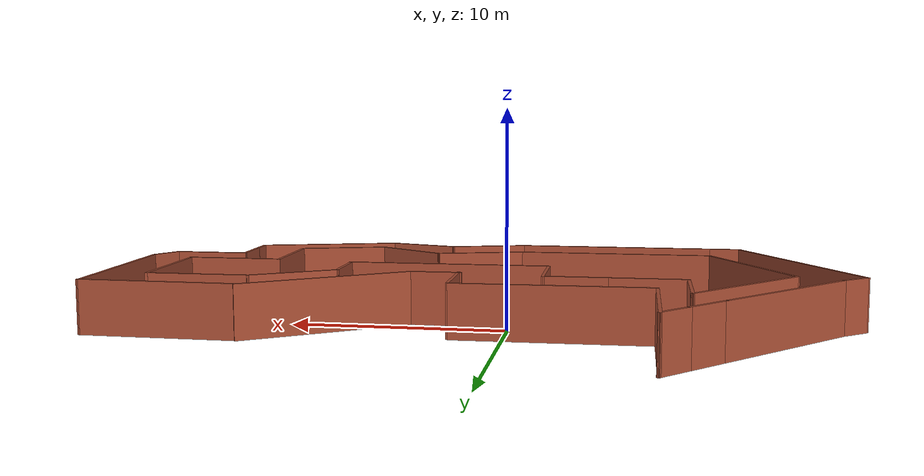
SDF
<?xml version='1.0'?>
<sdf version='1.6'>
  <model name='burger_race'>
    <pose frame=''>1.42471 -1.62776 0 0 -0 0</pose>
    <link name='Wall_10'>
      <collision name='Wall_10_Collision'>
        <geometry>
          <box>
            <size>4 0.15 2.5</size>
          </box>
        </geometry>
        <pose frame=''>0 0 1.25 0 -0 0</pose>
      </collision>
      <visual name='Wall_10_Visual'>
        <pose frame=''>0 0 1.25 0 -0 0</pose>
        <geometry>
          <box>
            <size>4 0.15 2.5</size>
          </box>
        </geometry>
        <material>
          <script>
            <uri>file://media/materials/scripts/gazebo.material</uri>
            <name>Gazebo/Bricks</name>
          </script>
          <ambient>1 1 1 1</ambient>
        </material>
        <meta>
          <layer>0</layer>
        </meta>
      </visual>
      <pose frame=''>4.60271 -5.99815 0 0 -0 -0.523599</pose>
    </link>
    <link name='Wall_11'>
      <collision name='Wall_11_Collision'>
        <geometry>
          <box>
            <size>4.5 0.15 2.5</size>
          </box>
        </geometry>
        <pose frame=''>0 0 1.25 0 -0 0</pose>
      </collision>
      <visual name='Wall_11_Visual'>
        <pose frame=''>0 0 1.25 0 -0 0</pose>
        <geometry>
          <box>
            <size>4.5 0.15 2.5</size>
          </box>
        </geometry>
        <material>
          <script>
            <uri>file://media/materials/scripts/gazebo.material</uri>
            <name>Gazebo/Bricks</name>
          </script>
          <ambient>1 1 1 1</ambient>
        </material>
        <meta>
          <layer>0</layer>
        </meta>
      </visual>
      <pose frame=''>8.37069 -6.39772 0 0 -0 0.261799</pose>
    </link>
    <link name='Wall_12'>
      <collision name='Wall_12_Collision'>
        <geometry>
          <box>
            <size>4 0.15 2.5</size>
          </box>
        </geometry>
        <pose frame=''>0 0 1.25 0 -0 0</pose>
      </collision>
      <visual name='Wall_12_Visual'>
        <pose frame=''>0 0 1.25 0 -0 0</pose>
        <geometry>
          <box>
            <size>4 0.15 2.5</size>
          </box>
        </geometry>
        <material>
          <script>
            <uri>file://media/materials/scripts/gazebo.material</uri>
            <name>Gazebo/Bricks</name>
          </script>
          <ambient>1 1 1 1</ambient>
        </material>
        <meta>
          <layer>0</layer>
        </meta>
      </visual>
      <pose frame=''>10.4716 -3.90979 0 0 -0 1.5708</pose>
    </link>
    <link name='Wall_13'>
      <collision name='Wall_13_Collision'>
        <geometry>
          <box>
            <size>4.75 0.15 2.5</size>
          </box>
        </geometry>
        <pose frame=''>0 0 1.25 0 -0 0</pose>
      </collision>
      <visual name='Wall_13_Visual'>
        <pose frame=''>0 0 1.25 0 -0 0</pose>
        <geometry>
          <box>
            <size>4.75 0.15 2.5</size>
          </box>
        </geometry>
        <material>
          <script>
            <uri>file://media/materials/scripts/gazebo.material</uri>
            <name>Gazebo/Bricks</name>
          </script>
          <ambient>1 1 1 1</ambient>
        </material>
        <meta>
          <layer>0</layer>
        </meta>
      </visual>
      <pose frame=''>12.7716 -1.98479 0 0 -0 0</pose>
    </link>
    <link name='Wall_14'>
      <collision name='Wall_14_Collision'>
        <geometry>
          <box>
            <size>5 0.15 2.5</size>
          </box>
        </geometry>
        <pose frame=''>0 0 1.25 0 -0 0</pose>
      </collision>
      <visual name='Wall_14_Visual'>
        <pose frame=''>0 0 1.25 0 -0 0</pose>
        <geometry>
          <box>
            <size>5 0.15 2.5</size>
          </box>
        </geometry>
        <material>
          <script>
            <uri>file://media/materials/scripts/gazebo.material</uri>
            <name>Gazebo/Bricks</name>
          </script>
          <ambient>1 1 1 1</ambient>
        </material>
        <meta>
          <layer>0</layer>
        </meta>
      </visual>
      <pose frame=''>15.0716 0.44021 0 0 -0 1.5708</pose>
    </link>
    <link name='Wall_15'>
      <collision name='Wall_15_Collision'>
        <geometry>
          <box>
            <size>5 0.15 2.5</size>
          </box>
        </geometry>
        <pose frame=''>0 0 1.25 0 -0 0</pose>
      </collision>
      <visual name='Wall_15_Visual'>
        <pose frame=''>0 0 1.25 0 -0 0</pose>
        <geometry>
          <box>
            <size>5 0.15 2.5</size>
          </box>
        </geometry>
        <material>
          <script>
            <uri>file://media/materials/scripts/gazebo.material</uri>
            <name>Gazebo/Bricks</name>
          </script>
          <ambient>1 1 1 1</ambient>
        </material>
        <meta>
          <layer>0</layer>
        </meta>
      </visual>
      <pose frame=''>12.6466 2.86521 0 0 -0 3.14159</pose>
    </link>
    <link name='Wall_16'>
      <collision name='Wall_16_Collision'>
        <geometry>
          <box>
            <size>4.25 0.15 2.5</size>
          </box>
        </geometry>
        <pose frame=''>0 0 1.25 0 -0 0</pose>
      </collision>
      <visual name='Wall_16_Visual'>
        <pose frame=''>0 0 1.25 0 -0 0</pose>
        <geometry>
          <box>
            <size>4.25 0.15 2.5</size>
          </box>
        </geometry>
        <material>
          <script>
            <uri>file://media/materials/scripts/gazebo.material</uri>
            <name>Gazebo/Bricks</name>
          </script>
          <ambient>1 1 1 1</ambient>
        </material>
        <meta>
          <layer>0</layer>
        </meta>
      </visual>
      <pose frame=''>8.44623 1.84021 0 0 -0 -2.61799</pose>
    </link>
    <link name='Wall_17'>
      <collision name='Wall_17_Collision'>
        <geometry>
          <box>
            <size>2.53735 0.15 2.5</size>
          </box>
        </geometry>
        <pose frame=''>0 0 1.25 0 -0 0</pose>
      </collision>
      <visual name='Wall_17_Visual'>
        <pose frame=''>0 0 1.25 0 -0 0</pose>
        <geometry>
          <box>
            <size>2.53735 0.15 2.5</size>
          </box>
        </geometry>
        <material>
          <script>
            <uri>file://media/materials/scripts/gazebo.material</uri>
            <name>Gazebo/Bricks</name>
          </script>
          <ambient>1 1 1 1</ambient>
        </material>
        <meta>
          <layer>0</layer>
        </meta>
      </visual>
      <pose frame=''>6.65758 -0.37839 0 0 -0 -1.58194</pose>
    </link>
    <link name='Wall_18'>
      <collision name='Wall_18_Collision'>
        <geometry>
          <box>
            <size>9.8185 0.15 2.5</size>
          </box>
        </geometry>
        <pose frame=''>0 0 1.25 0 -0 0</pose>
      </collision>
      <visual name='Wall_18_Visual'>
        <pose frame=''>0 0 1.25 0 -0 0</pose>
        <geometry>
          <box>
            <size>9.8185 0.15 2.5</size>
          </box>
        </geometry>
        <material>
          <script>
            <uri>file://media/materials/scripts/gazebo.material</uri>
            <name>Gazebo/Bricks</name>
          </script>
          <ambient>1 1 1 1</ambient>
        </material>
        <meta>
          <layer>0</layer>
        </meta>
      </visual>
      <pose frame=''>1.83669 -1.62397 0 0 -0 -3.13634</pose>
    </link>
    <link name='Wall_2'>
      <collision name='Wall_2_Collision'>
        <geometry>
          <box>
            <size>3.03732 0.15 2.5</size>
          </box>
        </geometry>
        <pose frame=''>0 0 1.25 0 -0 0</pose>
      </collision>
      <visual name='Wall_2_Visual'>
        <pose frame=''>0 0 1.25 0 -0 0</pose>
        <geometry>
          <box>
            <size>3.03732 0.15 2.5</size>
          </box>
        </geometry>
        <material>
          <script>
            <uri>file://media/materials/scripts/gazebo.material</uri>
            <name>Gazebo/Bricks</name>
          </script>
          <ambient>1 1 1 1</ambient>
        </material>
        <meta>
          <layer>0</layer>
        </meta>
      </visual>
      <pose frame=''>-3.01079 -0.17916 0 0 -0 1.56158</pose>
    </link>
    <link name='Wall_26'>
      <collision name='Wall_26_Collision'>
        <geometry>
          <box>
            <size>8 0.15 2.5</size>
          </box>
        </geometry>
        <pose frame=''>0 0 1.25 0 -0 0</pose>
      </collision>
      <visual name='Wall_26_Visual'>
        <pose frame=''>0 0 1.25 0 -0 0</pose>
        <geometry>
          <box>
            <size>8 0.15 2.5</size>
          </box>
        </geometry>
        <material>
          <script>
            <uri>file://media/materials/scripts/gazebo.material</uri>
            <name>Gazebo/Bricks</name>
          </script>
          <ambient>1 1 1 1</ambient>
        </material>
        <meta>
          <layer>0</layer>
        </meta>
      </visual>
      <pose frame=''>-13.4328 3.27016 0 0 -0 0.785398</pose>
    </link>
    <link name='Wall_27'>
      <collision name='Wall_27_Collision'>
        <geometry>
          <box>
            <size>2.25 0.15 2.5</size>
          </box>
        </geometry>
        <pose frame=''>0 0 1.25 0 -0 0</pose>
      </collision>
      <visual name='Wall_27_Visual'>
        <pose frame=''>0 0 1.25 0 -0 0</pose>
        <geometry>
          <box>
            <size>2.25 0.15 2.5</size>
          </box>
        </geometry>
        <material>
          <script>
            <uri>file://media/materials/scripts/gazebo.material</uri>
            <name>Gazebo/Bricks</name>
          </script>
          <ambient>1 1 1 1</ambient>
        </material>
        <meta>
          <layer>0</layer>
        </meta>
      </visual>
      <pose frame=''>-9.91491 6.78802 0 0 -0 0.785398</pose>
    </link>
    <link name='Wall_28'>
      <collision name='Wall_28_Collision'>
        <geometry>
          <box>
            <size>1.75 0.15 2.5</size>
          </box>
        </geometry>
        <pose frame=''>0 0 1.25 0 -0 0</pose>
      </collision>
      <visual name='Wall_28_Visual'>
        <pose frame=''>0 0 1.25 0 -0 0</pose>
        <geometry>
          <box>
            <size>1.75 0.15 2.5</size>
          </box>
        </geometry>
        <material>
          <script>
            <uri>file://media/materials/scripts/gazebo.material</uri>
            <name>Gazebo/Bricks</name>
          </script>
          <ambient>1 1 1 1</ambient>
        </material>
        <meta>
          <layer>0</layer>
        </meta>
      </visual>
      <pose frame=''>-8.60677 8.09617 0 0 -0 0.785398</pose>
    </link>
    <link name='Wall_29'>
      <collision name='Wall_29_Collision'>
        <geometry>
          <box>
            <size>5.25 0.15 2.5</size>
          </box>
        </geometry>
        <pose frame=''>0 0 1.25 0 -0 0</pose>
      </collision>
      <visual name='Wall_29_Visual'>
        <pose frame=''>0 0 1.25 0 -0 0</pose>
        <geometry>
          <box>
            <size>5.25 0.15 2.5</size>
          </box>
        </geometry>
        <material>
          <script>
            <uri>file://media/materials/scripts/gazebo.material</uri>
            <name>Gazebo/Bricks</name>
          </script>
          <ambient>1 1 1 1</ambient>
        </material>
        <meta>
          <layer>0</layer>
        </meta>
      </visual>
      <pose frame=''>-8.04108 6.11185 0 0 -0 -1.5708</pose>
    </link>
    <link name='Wall_3'>
      <collision name='Wall_3_Collision'>
        <geometry>
          <box>
            <size>3 0.15 2.5</size>
          </box>
        </geometry>
        <pose frame=''>0 0 1.25 0 -0 0</pose>
      </collision>
      <visual name='Wall_3_Visual'>
        <pose frame=''>0 0 1.25 0 -0 0</pose>
        <geometry>
          <box>
            <size>3 0.15 2.5</size>
          </box>
        </geometry>
        <material>
          <script>
            <uri>file://media/materials/scripts/gazebo.material</uri>
            <name>Gazebo/Bricks</name>
          </script>
          <ambient>1 1 1 1</ambient>
        </material>
        <meta>
          <layer>0</layer>
        </meta>
      </visual>
      <pose frame=''>-4.42249 1.26444 0 0 -0 3.14159</pose>
    </link>
    <link name='Wall_30'>
      <collision name='Wall_30_Collision'>
        <geometry>
          <box>
            <size>9.05694 0.15 2.5</size>
          </box>
        </geometry>
        <pose frame=''>0 0 1.25 0 -0 0</pose>
      </collision>
      <visual name='Wall_30_Visual'>
        <pose frame=''>0 0 1.25 0 -0 0</pose>
        <geometry>
          <box>
            <size>9.05694 0.15 2.5</size>
          </box>
        </geometry>
        <material>
          <script>
            <uri>file://media/materials/scripts/gazebo.material</uri>
            <name>Gazebo/Bricks</name>
          </script>
          <ambient>1 1 1 1</ambient>
        </material>
        <meta>
          <layer>0</layer>
        </meta>
      </visual>
      <pose frame=''>-3.58775 3.59723 0 0 -0 0.007944</pose>
    </link>
    <link name='Wall_31'>
      <collision name='Wall_31_Collision'>
        <geometry>
          <box>
            <size>3 0.15 2.5</size>
          </box>
        </geometry>
        <pose frame=''>0 0 1.25 0 -0 0</pose>
      </collision>
      <visual name='Wall_31_Visual'>
        <pose frame=''>0 0 1.25 0 -0 0</pose>
        <geometry>
          <box>
            <size>3 0.15 2.5</size>
          </box>
        </geometry>
        <material>
          <script>
            <uri>file://media/materials/scripts/gazebo.material</uri>
            <name>Gazebo/Bricks</name>
          </script>
          <ambient>1 1 1 1</ambient>
        </material>
        <meta>
          <layer>0</layer>
        </meta>
      </visual>
      <pose frame=''>0.936331 2.13685 0 0 -0 -1.5708</pose>
    </link>
    <link name='Wall_32'>
      <collision name='Wall_32_Collision'>
        <geometry>
          <box>
            <size>2.52473 0.15 2.5</size>
          </box>
        </geometry>
        <pose frame=''>0 0 1.25 0 -0 0</pose>
      </collision>
      <visual name='Wall_32_Visual'>
        <pose frame=''>0 0 1.25 0 -0 0</pose>
        <geometry>
          <box>
            <size>2.52473 0.15 2.5</size>
          </box>
        </geometry>
        <material>
          <script>
            <uri>file://media/materials/scripts/gazebo.material</uri>
            <name>Gazebo/Bricks</name>
          </script>
          <ambient>1 1 1 1</ambient>
        </material>
        <meta>
          <layer>0</layer>
        </meta>
      </visual>
      <pose frame=''>2.05289 0.793755 0 0 -0 0.009387</pose>
    </link>
    <link name='Wall_33'>
      <collision name='Wall_33_Collision'>
        <geometry>
          <box>
            <size>8.11406 0.15 2.5</size>
          </box>
        </geometry>
        <pose frame=''>0 0 1.25 0 -0 0</pose>
      </collision>
      <visual name='Wall_33_Visual'>
        <pose frame=''>0 0 1.25 0 -0 0</pose>
        <geometry>
          <box>
            <size>8.11406 0.15 2.5</size>
          </box>
        </geometry>
        <material>
          <script>
            <uri>file://media/materials/scripts/gazebo.material</uri>
            <name>Gazebo/Bricks</name>
          </script>
          <ambient>1 1 1 1</ambient>
        </material>
        <meta>
          <layer>0</layer>
        </meta>
      </visual>
      <pose frame=''>6.59283 3.00002 0 0 -0 0.56993</pose>
    </link>
    <link name='Wall_34'>
      <collision name='Wall_34_Collision'>
        <geometry>
          <box>
            <size>7.46095 0.15 2.5</size>
          </box>
        </geometry>
        <pose frame=''>0 0 1.25 0 -0 0</pose>
      </collision>
      <visual name='Wall_34_Visual'>
        <pose frame=''>0 0 1.25 0 -0 0</pose>
        <geometry>
          <box>
            <size>7.46095 0.15 2.5</size>
          </box>
        </geometry>
        <material>
          <script>
            <uri>file://media/materials/scripts/gazebo.material</uri>
            <name>Gazebo/Bricks</name>
          </script>
          <ambient>1 1 1 1</ambient>
        </material>
        <meta>
          <layer>0</layer>
        </meta>
      </visual>
      <pose frame=''>13.6003 5.03231 0 0 -0 -0.019092</pose>
    </link>
    <link name='Wall_35'>
      <collision name='Wall_35_Collision'>
        <geometry>
          <box>
            <size>7.67001 0.15 2.5</size>
          </box>
        </geometry>
        <pose frame=''>0 0 1.25 0 -0 0</pose>
      </collision>
      <visual name='Wall_35_Visual'>
        <pose frame=''>0 0 1.25 0 -0 0</pose>
        <geometry>
          <box>
            <size>7.67001 0.15 2.5</size>
          </box>
        </geometry>
        <material>
          <script>
            <uri>file://media/materials/scripts/gazebo.material</uri>
            <name>Gazebo/Bricks</name>
          </script>
          <ambient>1 1 1 1</ambient>
        </material>
        <meta>
          <layer>0</layer>
        </meta>
      </visual>
      <pose frame=''>17.2783 1.20316 0 0 -0 -1.55224</pose>
    </link>
    <link name='Wall_36'>
      <collision name='Wall_36_Collision'>
        <geometry>
          <box>
            <size>1.59591 0.15 2.5</size>
          </box>
        </geometry>
        <pose frame=''>0 0 1.25 0 -0 0</pose>
      </collision>
      <visual name='Wall_36_Visual'>
        <pose frame=''>0 0 1.25 0 -0 0</pose>
        <geometry>
          <box>
            <size>1.59591 0.15 2.5</size>
          </box>
        </geometry>
        <material>
          <script>
            <uri>file://media/materials/scripts/gazebo.material</uri>
            <name>Gazebo/Bricks</name>
          </script>
          <ambient>1 1 1 1</ambient>
        </material>
        <meta>
          <layer>0</layer>
        </meta>
      </visual>
      <pose frame=''>16.9527 -3.20793 0 0 -0 -2.14956</pose>
    </link>
    <link name='Wall_37'>
      <collision name='Wall_37_Collision'>
        <geometry>
          <box>
            <size>3.75 0.15 2.5</size>
          </box>
        </geometry>
        <pose frame=''>0 0 1.25 0 -0 0</pose>
      </collision>
      <visual name='Wall_37_Visual'>
        <pose frame=''>0 0 1.25 0 -0 0</pose>
        <geometry>
          <box>
            <size>3.75 0.15 2.5</size>
          </box>
        </geometry>
        <material>
          <script>
            <uri>file://media/materials/scripts/gazebo.material</uri>
            <name>Gazebo/Bricks</name>
          </script>
          <ambient>1 1 1 1</ambient>
        </material>
        <meta>
          <layer>0</layer>
        </meta>
      </visual>
      <pose frame=''>14.7572 -3.81315 0 0 -0 3.14159</pose>
    </link>
    <link name='Wall_38'>
      <collision name='Wall_38_Collision'>
        <geometry>
          <box>
            <size>2 0.15 2.5</size>
          </box>
        </geometry>
        <pose frame=''>0 0 1.25 0 -0 0</pose>
      </collision>
      <visual name='Wall_38_Visual'>
        <pose frame=''>0 0 1.25 0 -0 0</pose>
        <geometry>
          <box>
            <size>2 0.15 2.5</size>
          </box>
        </geometry>
        <material>
          <script>
            <uri>file://media/materials/scripts/gazebo.material</uri>
            <name>Gazebo/Bricks</name>
          </script>
          <ambient>1 1 1 1</ambient>
        </material>
        <meta>
          <layer>0</layer>
        </meta>
      </visual>
      <pose frame=''>12.9572 -4.73815 0 0 -0 -1.5708</pose>
    </link>
    <link name='Wall_39'>
      <collision name='Wall_39_Collision'>
        <geometry>
          <box>
            <size>1.25 0.15 2.5</size>
          </box>
        </geometry>
        <pose frame=''>0 0 1.25 0 -0 0</pose>
      </collision>
      <visual name='Wall_39_Visual'>
        <pose frame=''>0 0 1.25 0 -0 0</pose>
        <geometry>
          <box>
            <size>1.25 0.15 2.5</size>
          </box>
        </geometry>
        <material>
          <script>
            <uri>file://media/materials/scripts/gazebo.material</uri>
            <name>Gazebo/Bricks</name>
          </script>
          <ambient>1 1 1 1</ambient>
        </material>
        <meta>
          <layer>0</layer>
        </meta>
      </visual>
      <pose frame=''>12.9572 -6.21315 0 0 -0 -1.5708</pose>
    </link>
    <link name='Wall_4'>
      <collision name='Wall_4_Collision'>
        <geometry>
          <box>
            <size>3.75 0.15 2.5</size>
          </box>
        </geometry>
        <pose frame=''>0 0 1.25 0 -0 0</pose>
      </collision>
      <visual name='Wall_4_Visual'>
        <pose frame=''>0 0 1.25 0 -0 0</pose>
        <geometry>
          <box>
            <size>3.75 0.15 2.5</size>
          </box>
        </geometry>
        <material>
          <script>
            <uri>file://media/materials/scripts/gazebo.material</uri>
            <name>Gazebo/Bricks</name>
          </script>
          <ambient>1 1 1 1</ambient>
        </material>
        <meta>
          <layer>0</layer>
        </meta>
      </visual>
      <pose frame=''>-7.64749 1.26444 0 0 -0 3.14159</pose>
    </link>
    <link name='Wall_40'>
      <collision name='Wall_40_Collision'>
        <geometry>
          <box>
            <size>7.25 0.15 2.5</size>
          </box>
        </geometry>
        <pose frame=''>0 0 1.25 0 -0 0</pose>
      </collision>
      <visual name='Wall_40_Visual'>
        <pose frame=''>0 0 1.25 0 -0 0</pose>
        <geometry>
          <box>
            <size>7.25 0.15 2.5</size>
          </box>
        </geometry>
        <material>
          <script>
            <uri>file://media/materials/scripts/gazebo.material</uri>
            <name>Gazebo/Bricks</name>
          </script>
          <ambient>1 1 1 1</ambient>
        </material>
        <meta>
          <layer>0</layer>
        </meta>
      </visual>
      <pose frame=''>9.52818 -7.68196 0 0 -0 -2.87979</pose>
    </link>
    <link name='Wall_41'>
      <collision name='Wall_41_Collision'>
        <geometry>
          <box>
            <size>3.75 0.15 2.5</size>
          </box>
        </geometry>
        <pose frame=''>0 0 1.25 0 -0 0</pose>
      </collision>
      <visual name='Wall_41_Visual'>
        <pose frame=''>0 0 1.25 0 -0 0</pose>
        <geometry>
          <box>
            <size>3.75 0.15 2.5</size>
          </box>
        </geometry>
        <material>
          <script>
            <uri>file://media/materials/scripts/gazebo.material</uri>
            <name>Gazebo/Bricks</name>
          </script>
          <ambient>1 1 1 1</ambient>
        </material>
        <meta>
          <layer>0</layer>
        </meta>
      </visual>
      <pose frame=''>4.36048 -8.13489 0 0 -0 2.87979</pose>
    </link>
    <link name='Wall_42'>
      <collision name='Wall_42_Collision'>
        <geometry>
          <box>
            <size>4 0.15 2.5</size>
          </box>
        </geometry>
        <pose frame=''>0 0 1.25 0 -0 0</pose>
      </collision>
      <visual name='Wall_42_Visual'>
        <pose frame=''>0 0 1.25 0 -0 0</pose>
        <geometry>
          <box>
            <size>4 0.15 2.5</size>
          </box>
        </geometry>
        <material>
          <script>
            <uri>file://media/materials/scripts/gazebo.material</uri>
            <name>Gazebo/Bricks</name>
          </script>
          <ambient>1 1 1 1</ambient>
        </material>
        <meta>
          <layer>0</layer>
        </meta>
      </visual>
      <pose frame=''>0.762404 -8.16724 0 0 -0 -2.87979</pose>
    </link>
    <link name='Wall_43'>
      <collision name='Wall_43_Collision'>
        <geometry>
          <box>
            <size>10 0.15 2.5</size>
          </box>
        </geometry>
        <pose frame=''>0 0 1.25 0 -0 0</pose>
      </collision>
      <visual name='Wall_43_Visual'>
        <pose frame=''>0 0 1.25 0 -0 0</pose>
        <geometry>
          <box>
            <size>10 0.15 2.5</size>
          </box>
        </geometry>
        <material>
          <script>
            <uri>file://media/materials/scripts/gazebo.material</uri>
            <name>Gazebo/Bricks</name>
          </script>
          <ambient>1 1 1 1</ambient>
        </material>
        <meta>
          <layer>0</layer>
        </meta>
      </visual>
      <pose frame=''>-6.022 -8.66547 0 0 -0 3.14159</pose>
    </link>
    <link name='Wall_44'>
      <collision name='Wall_44_Collision'>
        <geometry>
          <box>
            <size>1.75 0.15 2.5</size>
          </box>
        </geometry>
        <pose frame=''>0 0 1.25 0 -0 0</pose>
      </collision>
      <visual name='Wall_44_Visual'>
        <pose frame=''>0 0 1.25 0 -0 0</pose>
        <geometry>
          <box>
            <size>1.75 0.15 2.5</size>
          </box>
        </geometry>
        <material>
          <script>
            <uri>file://media/materials/scripts/gazebo.material</uri>
            <name>Gazebo/Bricks</name>
          </script>
          <ambient>1 1 1 1</ambient>
        </material>
        <meta>
          <layer>0</layer>
        </meta>
      </visual>
      <pose frame=''>-11.747 -8.66547 0 0 -0 3.14159</pose>
    </link>
    <link name='Wall_45'>
      <collision name='Wall_45_Collision'>
        <geometry>
          <box>
            <size>9.75 0.15 2.5</size>
          </box>
        </geometry>
        <pose frame=''>0 0 1.25 0 -0 0</pose>
      </collision>
      <visual name='Wall_45_Visual'>
        <pose frame=''>0 0 1.25 0 -0 0</pose>
        <geometry>
          <box>
            <size>9.75 0.15 2.5</size>
          </box>
        </geometry>
        <material>
          <script>
            <uri>file://media/materials/scripts/gazebo.material</uri>
            <name>Gazebo/Bricks</name>
          </script>
          <ambient>1 1 1 1</ambient>
        </material>
        <meta>
          <layer>0</layer>
        </meta>
      </visual>
      <pose frame=''>-14.947 -4.50854 0 0 -0 2.0944</pose>
    </link>
    <link name='Wall_46'>
      <collision name='Wall_46_Collision'>
        <geometry>
          <box>
            <size>1.56892 0.15 2.5</size>
          </box>
        </geometry>
        <pose frame=''>0 0 1.25 0 -0 0</pose>
      </collision>
      <visual name='Wall_46_Visual'>
        <pose frame=''>0 0 1.25 0 -0 0</pose>
        <geometry>
          <box>
            <size>1.56892 0.15 2.5</size>
          </box>
        </geometry>
        <material>
          <script>
            <uri>file://media/materials/scripts/gazebo.material</uri>
            <name>Gazebo/Bricks</name>
          </script>
          <ambient>1 1 1 1</ambient>
        </material>
        <meta>
          <layer>0</layer>
        </meta>
      </visual>
      <pose frame=''>-16.7776 0.071573 0 0 -0 0.63914</pose>
    </link>
    <link name='Wall_5'>
      <collision name='Wall_5_Collision'>
        <geometry>
          <box>
            <size>3.5 0.15 2.5</size>
          </box>
        </geometry>
        <pose frame=''>0 0 1.25 0 -0 0</pose>
      </collision>
      <visual name='Wall_5_Visual'>
        <pose frame=''>0 0 1.25 0 -0 0</pose>
        <geometry>
          <box>
            <size>3.5 0.15 2.5</size>
          </box>
        </geometry>
        <material>
          <script>
            <uri>file://media/materials/scripts/gazebo.material</uri>
            <name>Gazebo/Bricks</name>
          </script>
          <ambient>1 1 1 1</ambient>
        </material>
        <meta>
          <layer>0</layer>
        </meta>
      </visual>
      <pose frame=''>-9.44749 2.93944 0 0 -0 1.5708</pose>
    </link>
    <link name='Wall_6'>
      <collision name='Wall_6_Collision'>
        <geometry>
          <box>
            <size>7 0.15 2.5</size>
          </box>
        </geometry>
        <pose frame=''>0 0 1.25 0 -0 0</pose>
      </collision>
      <visual name='Wall_6_Visual'>
        <pose frame=''>0 0 1.25 0 -0 0</pose>
        <geometry>
          <box>
            <size>7 0.15 2.5</size>
          </box>
        </geometry>
        <material>
          <script>
            <uri>file://media/materials/scripts/gazebo.material</uri>
            <name>Gazebo/Bricks</name>
          </script>
          <ambient>1 1 1 1</ambient>
        </material>
        <meta>
          <layer>0</layer>
        </meta>
      </visual>
      <pose frame=''>-11.8693 2.1926 0 0 -0 -2.35619</pose>
    </link>
    <link name='Wall_7'>
      <collision name='Wall_7_Collision'>
        <geometry>
          <box>
            <size>7 0.15 2.5</size>
          </box>
        </geometry>
        <pose frame=''>0 0 1.25 0 -0 0</pose>
      </collision>
      <visual name='Wall_7_Visual'>
        <pose frame=''>0 0 1.25 0 -0 0</pose>
        <geometry>
          <box>
            <size>7 0.15 2.5</size>
          </box>
        </geometry>
        <material>
          <script>
            <uri>file://media/materials/scripts/gazebo.material</uri>
            <name>Gazebo/Bricks</name>
          </script>
          <ambient>1 1 1 1</ambient>
        </material>
        <meta>
          <layer>0</layer>
        </meta>
      </visual>
      <pose frame=''>-12.5787 -3.19538 0 0 -0 -1.0472</pose>
    </link>
    <link name='Wall_8'>
      <collision name='Wall_8_Collision'>
        <geometry>
          <box>
            <size>9.75 0.15 2.5</size>
          </box>
        </geometry>
        <pose frame=''>0 0 1.25 0 -0 0</pose>
      </collision>
      <visual name='Wall_8_Visual'>
        <pose frame=''>0 0 1.25 0 -0 0</pose>
        <geometry>
          <box>
            <size>9.75 0.15 2.5</size>
          </box>
        </geometry>
        <material>
          <script>
            <uri>file://media/materials/scripts/gazebo.material</uri>
            <name>Gazebo/Bricks</name>
          </script>
          <ambient>1 1 1 1</ambient>
        </material>
        <meta>
          <layer>0</layer>
        </meta>
      </visual>
      <pose frame=''>-6.06617 -6.16152 0 0 -0 0</pose>
    </link>
    <link name='Wall_9'>
      <collision name='Wall_9_Collision'>
        <geometry>
          <box>
            <size>4.5 0.15 2.5</size>
          </box>
        </geometry>
        <pose frame=''>0 0 1.25 0 -0 0</pose>
      </collision>
      <visual name='Wall_9_Visual'>
        <pose frame=''>0 0 1.25 0 -0 0</pose>
        <geometry>
          <box>
            <size>4.5 0.15 2.5</size>
          </box>
        </geometry>
        <material>
          <script>
            <uri>file://media/materials/scripts/gazebo.material</uri>
            <name>Gazebo/Bricks</name>
          </script>
          <ambient>1 1 1 1</ambient>
        </material>
        <meta>
          <layer>0</layer>
        </meta>
      </visual>
      <pose frame=''>0.834718 -5.59858 0 0 -0 0.261799</pose>
    </link>
    <static>1</static>
  </model>
</sdf>
